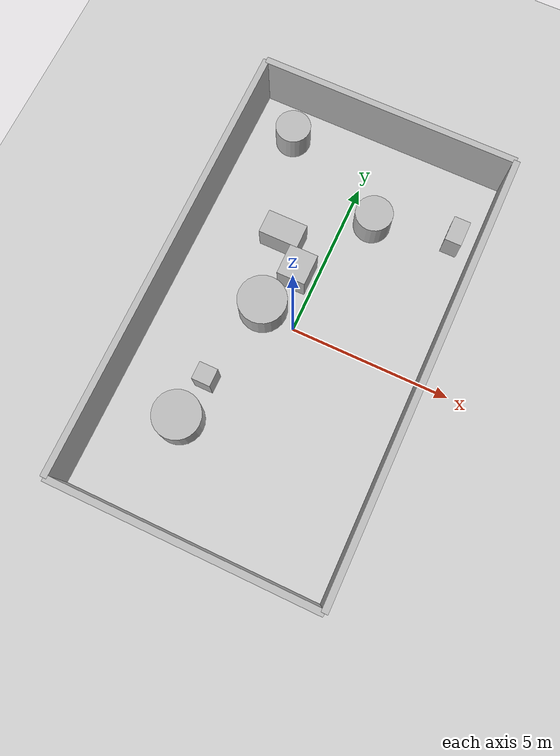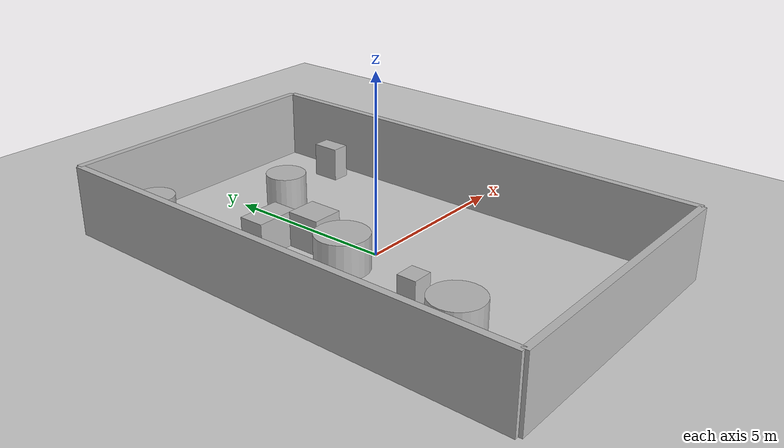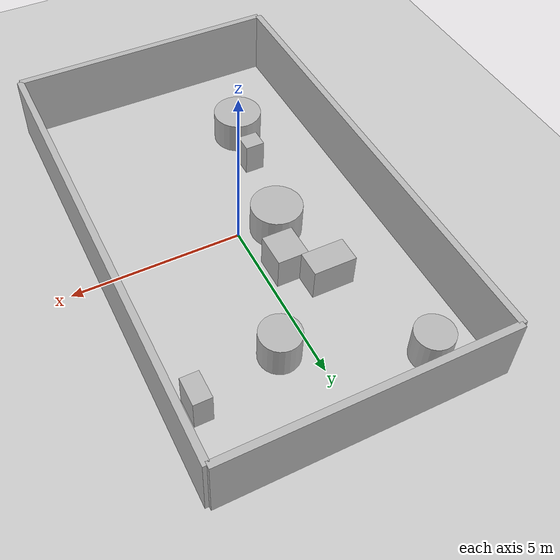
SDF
<?xml version="1.0"?>
<sdf version="1.6">
  <world name="env_9">

    <include><uri>model://ground_plane</uri></include>
    <include><uri>model://sun</uri></include>

    <!-- WALLS -->
    <model name="wall_north"><static>true</static><pose>0 6.931299586132785 1 0 0 0</pose>
      <link name="link"><collision name="collision">
        <geometry><box><size>8.141223793636998 0.2 2</size></box></geometry>
      </collision><visual name="visual">
        <geometry><box><size>8.141223793636998 0.2 2</size></box></geometry>
      </visual></link>
    </model>

    <model name="wall_south"><static>true</static><pose>0 -6.931299586132785 1 0 0 0</pose>
      <link name="link"><collision name="collision">
        <geometry><box><size>8.141223793636998 0.2 2</size></box></geometry>
      </collision><visual name="visual">
        <geometry><box><size>8.141223793636998 0.2 2</size></box></geometry>
      </visual></link>
    </model>

    <model name="wall_east"><static>true</static><pose>4.070611896818499 0 1 0 0 1.57</pose>
      <link name="link"><collision name="collision">
        <geometry><box><size>13.86259917226557 0.2 2</size></box></geometry>
      </collision><visual name="visual">
        <geometry><box><size>13.86259917226557 0.2 2</size></box></geometry>
      </visual></link>
    </model>

    <model name="wall_west"><static>true</static><pose>-4.070611896818499 0 1 0 0 1.57</pose>
      <link name="link"><collision name="collision">
        <geometry><box><size>13.86259917226557 0.2 2</size></box></geometry>
      </collision><visual name="visual">
        <geometry><box><size>13.86259917226557 0.2 2</size></box></geometry>
      </visual></link>
    </model>

    <!-- SENSOR -->

    <model name="lidar_sensor">
      <static>true</static>
      <pose>-0.0722211718769663 -2.8605855970604415 0.4 0 0 0</pose>
      <link name="link">
        <sensor name="lidar" type="ray">
          <pose>0 0 0 0 0 0</pose>
          <visualize>true</visualize>
          <always_on>true</always_on>
          <update_rate>10</update_rate>
          <ray>
            <scan><horizontal>
              <samples>120</samples>
              <resolution>1</resolution>
              <min_angle>-3.14159</min_angle>
              <max_angle>3.14159</max_angle>
            </horizontal></scan>
            <range><min>0.15</min><max>20.0</max><resolution>0.01</resolution></range>
          </ray>
          <plugin name="lidar_plugin" filename="liblidar_plugin.so"/>
        </sensor>
      </link>
    </model>

    <!-- OBSTACLES -->

    <model name="obstacle_0">
      <static>true</static>
      <pose>-1.8300778702808034 -3.8679843828325593 0.5 0 0 0</pose>
      <link name="link">
        <collision name="collision">
          <geometry><cylinder><radius>0.73</radius><length>1.0</length></cylinder></geometry>
        </collision>
        <visual name="visual">
          <geometry><cylinder><radius>0.73</radius><length>1.0</length></cylinder></geometry>
        </visual>
      </link>
    </model>

    <model name="obstacle_1">
      <static>true</static>
      <pose>-0.602271655135719 1.6324967428913242 0.5 0 0 0</pose>
      <link name="link">
        <collision name="collision">
          <geometry><box><size>0.9 0.98 1.0</size></box></geometry>
        </collision>
        <visual name="visual">
          <geometry><box><size>0.9 0.98 1.0</size></box></geometry>
        </visual>
      </link>
    </model>

    <model name="obstacle_2">
      <static>true</static>
      <pose>-1.462044665432987 2.4857732316031607 0.5 0 0 0</pose>
      <link name="link">
        <collision name="collision">
          <geometry><box><size>1.26 0.75 1.0</size></box></geometry>
        </collision>
        <visual name="visual">
          <geometry><box><size>1.26 0.75 1.0</size></box></geometry>
        </visual>
      </link>
    </model>

    <model name="obstacle_3">
      <static>true</static>
      <pose>-2.612538259915808 5.722289568582176 0.5 0 0 0</pose>
      <link name="link">
        <collision name="collision">
          <geometry><cylinder><radius>0.55</radius><length>1.0</length></cylinder></geometry>
        </collision>
        <visual name="visual">
          <geometry><cylinder><radius>0.55</radius><length>1.0</length></cylinder></geometry>
        </visual>
      </link>
    </model>

    <model name="obstacle_4">
      <static>true</static>
      <pose>-1.0867119314488267 0.2155144542085461 0.5 0 0 0</pose>
      <link name="link">
        <collision name="collision">
          <geometry><cylinder><radius>0.75</radius><length>1.0</length></cylinder></geometry>
        </collision>
        <visual name="visual">
          <geometry><cylinder><radius>0.75</radius><length>1.0</length></cylinder></geometry>
        </visual>
      </link>
    </model>

    <model name="obstacle_5">
      <static>true</static>
      <pose>3.3290398057594786 4.600722440120852 0.5 0 0 0</pose>
      <link name="link">
        <collision name="collision">
          <geometry><box><size>0.52 0.81 1.0</size></box></geometry>
        </collision>
        <visual name="visual">
          <geometry><box><size>0.52 0.81 1.0</size></box></geometry>
        </visual>
      </link>
    </model>

    <model name="obstacle_6">
      <static>true</static>
      <pose>-1.6255071827214542 -2.48767532034144 0.5 0 0 0</pose>
      <link name="link">
        <collision name="collision">
          <geometry><box><size>0.58 0.55 1.0</size></box></geometry>
        </collision>
        <visual name="visual">
          <geometry><box><size>0.58 0.55 1.0</size></box></geometry>
        </visual>
      </link>
    </model>

    <model name="obstacle_7">
      <static>true</static>
      <pose>0.8272356801315963 4.0864232583017275 0.5 0 0 0</pose>
      <link name="link">
        <collision name="collision">
          <geometry><cylinder><radius>0.58</radius><length>1.0</length></cylinder></geometry>
        </collision>
        <visual name="visual">
          <geometry><cylinder><radius>0.58</radius><length>1.0</length></cylinder></geometry>
        </visual>
      </link>
    </model>

  </world>
</sdf>
